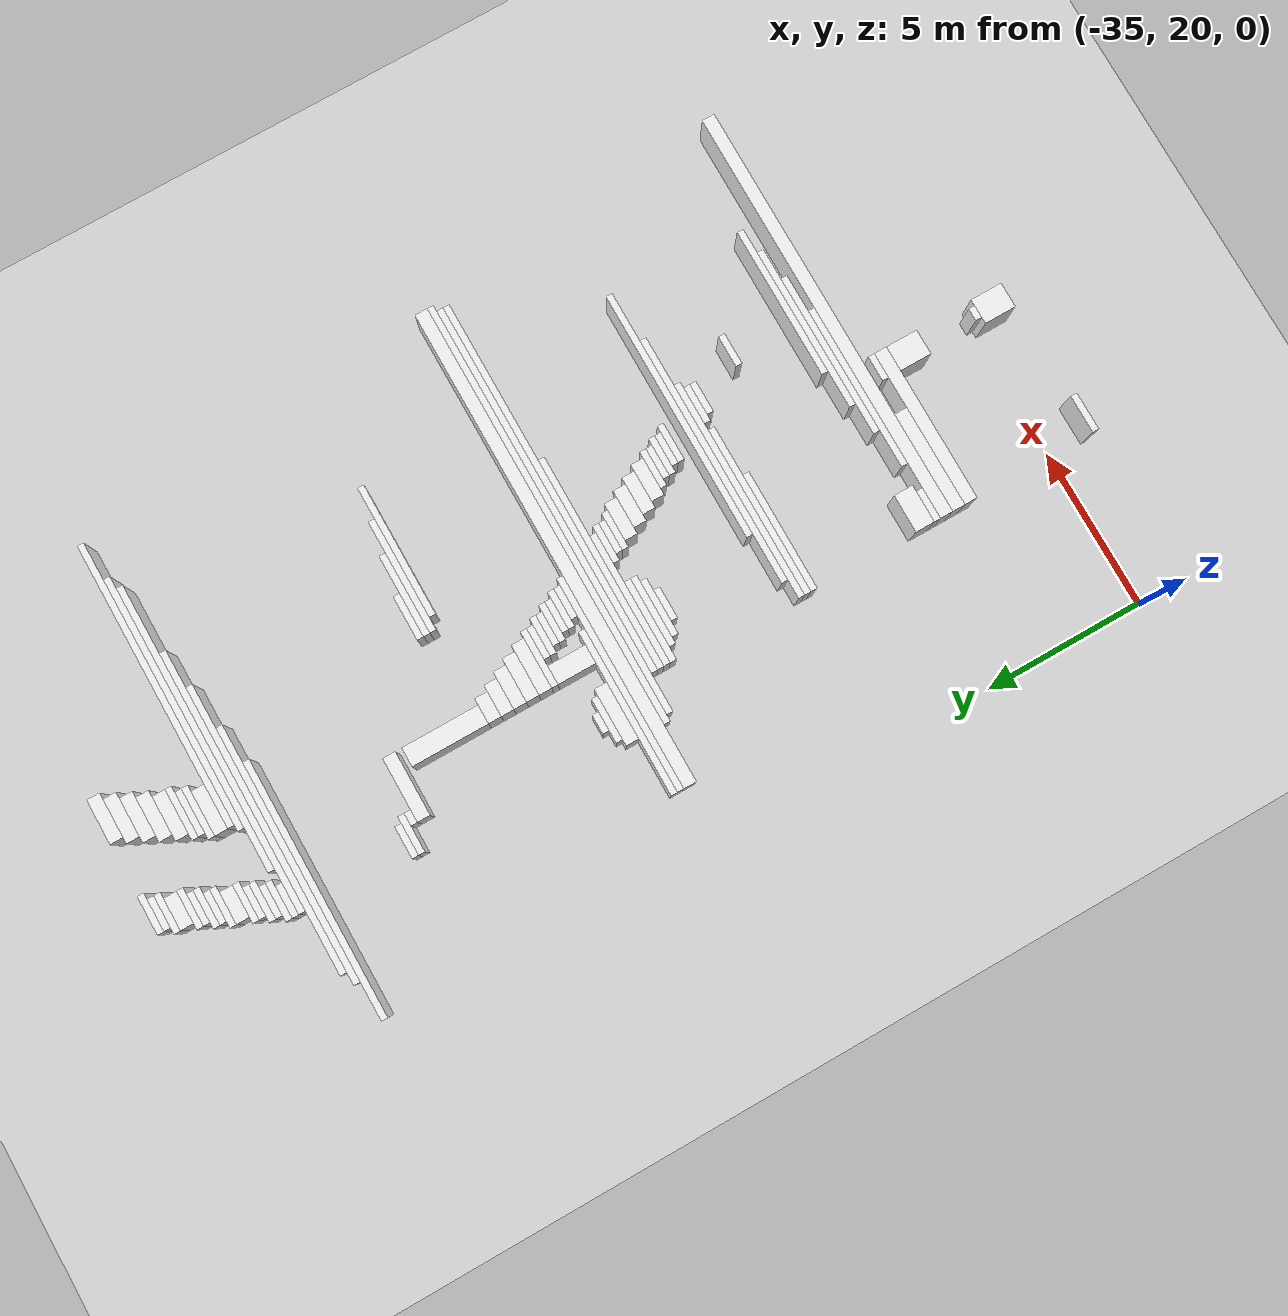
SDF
<sdf version="1.7">
 <world name="default">
  <model name="ground_plane">
   <static>1</static>
   <link name="link">
    <collision name="collision">
     <geometry><plane><normal>0 0 1</normal><size>120 120</size></plane></geometry>
    </collision>
    <visual name="visual">
     <geometry><plane><normal>0 0 1</normal><size>120 120</size></plane></geometry>
     <material>
      <script><uri>file://media/materials/scripts/gazebo.material</uri><name>Gazebo/Grey</name></script>
     </material>
    </visual>
   </link>
  </model>
  <model name="random_complex_01_model">
   <static>1</static>
   <link name="obs_2">
    <pose>-29.0000 48.3000 0.8000 0 0 0</pose>
    <collision name="obs_2_col"><geometry><box><size>1.2000 0.2000 1.6000</size></box></geometry></collision>
    <visual name="obs_2_vis">
     <geometry><box><size>1.2000 0.2000 1.6000</size></box></geometry>
     <material>
      <script><uri>file://media/materials/scripts/gazebo.material</uri><name>Gazebo/White</name></script>
     </material>
    </visual>
   </link>
   <link name="obs_7">
    <pose>-26.1000 48.2000 0.8000 0 0 0</pose>
    <collision name="obs_7_col"><geometry><box><size>1.4000 0.4000 1.6000</size></box></geometry></collision>
    <visual name="obs_7_vis">
     <geometry><box><size>1.4000 0.4000 1.6000</size></box></geometry>
     <material>
      <script><uri>file://media/materials/scripts/gazebo.material</uri><name>Gazebo/White</name></script>
     </material>
    </visual>
   </link>
   <link name="obs_9">
    <pose>-29.1000 48.1000 0.8000 0 0 0</pose>
    <collision name="obs_9_col"><geometry><box><size>1.0000 0.2000 1.6000</size></box></geometry></collision>
    <visual name="obs_9_vis">
     <geometry><box><size>1.0000 0.2000 1.6000</size></box></geometry>
     <material>
      <script><uri>file://media/materials/scripts/gazebo.material</uri><name>Gazebo/White</name></script>
     </material>
    </visual>
   </link>
   <link name="obs_16">
    <pose>-29.2000 47.9000 0.8000 0 0 0</pose>
    <collision name="obs_16_col"><geometry><box><size>1.2000 0.2000 1.6000</size></box></geometry></collision>
    <visual name="obs_16_vis">
     <geometry><box><size>1.2000 0.2000 1.6000</size></box></geometry>
     <material>
      <script><uri>file://media/materials/scripts/gazebo.material</uri><name>Gazebo/White</name></script>
     </material>
    </visual>
   </link>
   <link name="obs_22">
    <pose>-26.3000 47.8000 0.8000 0 0 0</pose>
    <collision name="obs_22_col"><geometry><box><size>1.4000 0.4000 1.6000</size></box></geometry></collision>
    <visual name="obs_22_vis">
     <geometry><box><size>1.4000 0.4000 1.6000</size></box></geometry>
     <material>
      <script><uri>file://media/materials/scripts/gazebo.material</uri><name>Gazebo/White</name></script>
     </material>
    </visual>
   </link>
   <link name="obs_27">
    <pose>-29.3000 47.6000 0.8000 0 0 0</pose>
    <collision name="obs_27_col"><geometry><box><size>1.0000 0.4000 1.6000</size></box></geometry></collision>
    <visual name="obs_27_vis">
     <geometry><box><size>1.0000 0.4000 1.6000</size></box></geometry>
     <material>
      <script><uri>file://media/materials/scripts/gazebo.material</uri><name>Gazebo/White</name></script>
     </material>
    </visual>
   </link>
   <link name="obs_35">
    <pose>-26.5000 47.4000 0.8000 0 0 0</pose>
    <collision name="obs_35_col"><geometry><box><size>1.4000 0.4000 1.6000</size></box></geometry></collision>
    <visual name="obs_35_vis">
     <geometry><box><size>1.4000 0.4000 1.6000</size></box></geometry>
     <material>
      <script><uri>file://media/materials/scripts/gazebo.material</uri><name>Gazebo/White</name></script>
     </material>
    </visual>
   </link>
   <link name="obs_37">
    <pose>-29.4000 47.3000 0.8000 0 0 0</pose>
    <collision name="obs_37_col"><geometry><box><size>1.2000 0.2000 1.6000</size></box></geometry></collision>
    <visual name="obs_37_vis">
     <geometry><box><size>1.2000 0.2000 1.6000</size></box></geometry>
     <material>
      <script><uri>file://media/materials/scripts/gazebo.material</uri><name>Gazebo/White</name></script>
     </material>
    </visual>
   </link>
   <link name="obs_43">
    <pose>-29.5000 47.1000 0.8000 0 0 0</pose>
    <collision name="obs_43_col"><geometry><box><size>1.0000 0.2000 1.6000</size></box></geometry></collision>
    <visual name="obs_43_vis">
     <geometry><box><size>1.0000 0.2000 1.6000</size></box></geometry>
     <material>
      <script><uri>file://media/materials/scripts/gazebo.material</uri><name>Gazebo/White</name></script>
     </material>
    </visual>
   </link>
   <link name="obs_48">
    <pose>-26.7000 47.0000 0.8000 0 0 0</pose>
    <collision name="obs_48_col"><geometry><box><size>1.4000 0.4000 1.6000</size></box></geometry></collision>
    <visual name="obs_48_vis">
     <geometry><box><size>1.4000 0.4000 1.6000</size></box></geometry>
     <material>
      <script><uri>file://media/materials/scripts/gazebo.material</uri><name>Gazebo/White</name></script>
     </material>
    </visual>
   </link>
   <link name="obs_50">
    <pose>-29.6000 46.9000 0.8000 0 0 0</pose>
    <collision name="obs_50_col"><geometry><box><size>1.2000 0.2000 1.6000</size></box></geometry></collision>
    <visual name="obs_50_vis">
     <geometry><box><size>1.2000 0.2000 1.6000</size></box></geometry>
     <material>
      <script><uri>file://media/materials/scripts/gazebo.material</uri><name>Gazebo/White</name></script>
     </material>
    </visual>
   </link>
   <link name="obs_57">
    <pose>-29.7000 46.7000 0.8000 0 0 0</pose>
    <collision name="obs_57_col"><geometry><box><size>1.0000 0.2000 1.6000</size></box></geometry></collision>
    <visual name="obs_57_vis">
     <geometry><box><size>1.0000 0.2000 1.6000</size></box></geometry>
     <material>
      <script><uri>file://media/materials/scripts/gazebo.material</uri><name>Gazebo/White</name></script>
     </material>
    </visual>
   </link>
   <link name="obs_61">
    <pose>-26.9000 46.6000 0.8000 0 0 0</pose>
    <collision name="obs_61_col"><geometry><box><size>1.4000 0.4000 1.6000</size></box></geometry></collision>
    <visual name="obs_61_vis">
     <geometry><box><size>1.4000 0.4000 1.6000</size></box></geometry>
     <material>
      <script><uri>file://media/materials/scripts/gazebo.material</uri><name>Gazebo/White</name></script>
     </material>
    </visual>
   </link>
   <link name="obs_64">
    <pose>-29.8000 46.5000 0.8000 0 0 0</pose>
    <collision name="obs_64_col"><geometry><box><size>1.2000 0.2000 1.6000</size></box></geometry></collision>
    <visual name="obs_64_vis">
     <geometry><box><size>1.2000 0.2000 1.6000</size></box></geometry>
     <material>
      <script><uri>file://media/materials/scripts/gazebo.material</uri><name>Gazebo/White</name></script>
     </material>
    </visual>
   </link>
   <link name="obs_71">
    <pose>-27.0000 46.3000 0.8000 0 0 0</pose>
    <collision name="obs_71_col"><geometry><box><size>1.6000 0.2000 1.6000</size></box></geometry></collision>
    <visual name="obs_71_vis">
     <geometry><box><size>1.6000 0.2000 1.6000</size></box></geometry>
     <material>
      <script><uri>file://media/materials/scripts/gazebo.material</uri><name>Gazebo/White</name></script>
     </material>
    </visual>
   </link>
   <link name="obs_78">
    <pose>-29.9000 46.2000 0.8000 0 0 0</pose>
    <collision name="obs_78_col"><geometry><box><size>1.0000 0.4000 1.6000</size></box></geometry></collision>
    <visual name="obs_78_vis">
     <geometry><box><size>1.0000 0.4000 1.6000</size></box></geometry>
     <material>
      <script><uri>file://media/materials/scripts/gazebo.material</uri><name>Gazebo/White</name></script>
     </material>
    </visual>
   </link>
   <link name="obs_81">
    <pose>-27.1000 46.1000 0.8000 0 0 0</pose>
    <collision name="obs_81_col"><geometry><box><size>1.4000 0.2000 1.6000</size></box></geometry></collision>
    <visual name="obs_81_vis">
     <geometry><box><size>1.4000 0.2000 1.6000</size></box></geometry>
     <material>
      <script><uri>file://media/materials/scripts/gazebo.material</uri><name>Gazebo/White</name></script>
     </material>
    </visual>
   </link>
   <link name="obs_90">
    <pose>-30.0000 45.9000 0.8000 0 0 0</pose>
    <collision name="obs_90_col"><geometry><box><size>1.2000 0.2000 1.6000</size></box></geometry></collision>
    <visual name="obs_90_vis">
     <geometry><box><size>1.2000 0.2000 1.6000</size></box></geometry>
     <material>
      <script><uri>file://media/materials/scripts/gazebo.material</uri><name>Gazebo/White</name></script>
     </material>
    </visual>
   </link>
   <link name="obs_91">
    <pose>-27.2000 45.9000 0.8000 0 0 0</pose>
    <collision name="obs_91_col"><geometry><box><size>1.6000 0.2000 1.6000</size></box></geometry></collision>
    <visual name="obs_91_vis">
     <geometry><box><size>1.6000 0.2000 1.6000</size></box></geometry>
     <material>
      <script><uri>file://media/materials/scripts/gazebo.material</uri><name>Gazebo/White</name></script>
     </material>
    </visual>
   </link>
   <link name="obs_99">
    <pose>-30.1000 45.7000 0.8000 0 0 0</pose>
    <collision name="obs_99_col"><geometry><box><size>1.0000 0.2000 1.6000</size></box></geometry></collision>
    <visual name="obs_99_vis">
     <geometry><box><size>1.0000 0.2000 1.6000</size></box></geometry>
     <material>
      <script><uri>file://media/materials/scripts/gazebo.material</uri><name>Gazebo/White</name></script>
     </material>
    </visual>
   </link>
   <link name="obs_104">
    <pose>-27.3000 45.6000 0.8000 0 0 0</pose>
    <collision name="obs_104_col"><geometry><box><size>1.4000 0.4000 1.6000</size></box></geometry></collision>
    <visual name="obs_104_vis">
     <geometry><box><size>1.4000 0.4000 1.6000</size></box></geometry>
     <material>
      <script><uri>file://media/materials/scripts/gazebo.material</uri><name>Gazebo/White</name></script>
     </material>
    </visual>
   </link>
   <link name="obs_110">
    <pose>-30.2000 45.5000 0.8000 0 0 0</pose>
    <collision name="obs_110_col"><geometry><box><size>1.2000 0.2000 1.6000</size></box></geometry></collision>
    <visual name="obs_110_vis">
     <geometry><box><size>1.2000 0.2000 1.6000</size></box></geometry>
     <material>
      <script><uri>file://media/materials/scripts/gazebo.material</uri><name>Gazebo/White</name></script>
     </material>
    </visual>
   </link>
   <link name="obs_117">
    <pose>-30.3000 45.3000 0.8000 0 0 0</pose>
    <collision name="obs_117_col"><geometry><box><size>1.0000 0.2000 1.6000</size></box></geometry></collision>
    <visual name="obs_117_vis">
     <geometry><box><size>1.0000 0.2000 1.6000</size></box></geometry>
     <material>
      <script><uri>file://media/materials/scripts/gazebo.material</uri><name>Gazebo/White</name></script>
     </material>
    </visual>
   </link>
   <link name="obs_118">
    <pose>-23.5000 45.3000 0.8000 0 0 0</pose>
    <collision name="obs_118_col"><geometry><box><size>9.0000 0.2000 1.6000</size></box></geometry></collision>
    <visual name="obs_118_vis">
     <geometry><box><size>9.0000 0.2000 1.6000</size></box></geometry>
     <material>
      <script><uri>file://media/materials/scripts/gazebo.material</uri><name>Gazebo/White</name></script>
     </material>
    </visual>
   </link>
   <link name="obs_127">
    <pose>-30.4000 45.1000 0.8000 0 0 0</pose>
    <collision name="obs_127_col"><geometry><box><size>1.2000 0.2000 1.6000</size></box></geometry></collision>
    <visual name="obs_127_vis">
     <geometry><box><size>1.2000 0.2000 1.6000</size></box></geometry>
     <material>
      <script><uri>file://media/materials/scripts/gazebo.material</uri><name>Gazebo/White</name></script>
     </material>
    </visual>
   </link>
   <link name="obs_128">
    <pose>-24.2000 45.1000 0.8000 0 0 0</pose>
    <collision name="obs_128_col"><geometry><box><size>8.0000 0.2000 1.6000</size></box></geometry></collision>
    <visual name="obs_128_vis">
     <geometry><box><size>8.0000 0.2000 1.6000</size></box></geometry>
     <material>
      <script><uri>file://media/materials/scripts/gazebo.material</uri><name>Gazebo/White</name></script>
     </material>
    </visual>
   </link>
   <link name="obs_135">
    <pose>-30.5000 44.9000 0.8000 0 0 0</pose>
    <collision name="obs_135_col"><geometry><box><size>1.0000 0.2000 1.6000</size></box></geometry></collision>
    <visual name="obs_135_vis">
     <geometry><box><size>1.0000 0.2000 1.6000</size></box></geometry>
     <material>
      <script><uri>file://media/materials/scripts/gazebo.material</uri><name>Gazebo/White</name></script>
     </material>
    </visual>
   </link>
   <link name="obs_136">
    <pose>-25.1000 44.9000 0.8000 0 0 0</pose>
    <collision name="obs_136_col"><geometry><box><size>9.0000 0.2000 1.6000</size></box></geometry></collision>
    <visual name="obs_136_vis">
     <geometry><box><size>9.0000 0.2000 1.6000</size></box></geometry>
     <material>
      <script><uri>file://media/materials/scripts/gazebo.material</uri><name>Gazebo/White</name></script>
     </material>
    </visual>
   </link>
   <link name="obs_144">
    <pose>-26.9000 44.7000 0.8000 0 0 0</pose>
    <collision name="obs_144_col"><geometry><box><size>8.2000 0.2000 1.6000</size></box></geometry></collision>
    <visual name="obs_144_vis">
     <geometry><box><size>8.2000 0.2000 1.6000</size></box></geometry>
     <material>
      <script><uri>file://media/materials/scripts/gazebo.material</uri><name>Gazebo/White</name></script>
     </material>
    </visual>
   </link>
   <link name="obs_151">
    <pose>-28.5000 44.5000 0.8000 0 0 0</pose>
    <collision name="obs_151_col"><geometry><box><size>9.0000 0.2000 1.6000</size></box></geometry></collision>
    <visual name="obs_151_vis">
     <geometry><box><size>9.0000 0.2000 1.6000</size></box></geometry>
     <material>
      <script><uri>file://media/materials/scripts/gazebo.material</uri><name>Gazebo/White</name></script>
     </material>
    </visual>
   </link>
   <link name="obs_158">
    <pose>-29.4000 44.3000 0.8000 0 0 0</pose>
    <collision name="obs_158_col"><geometry><box><size>8.0000 0.2000 1.6000</size></box></geometry></collision>
    <visual name="obs_158_vis">
     <geometry><box><size>8.0000 0.2000 1.6000</size></box></geometry>
     <material>
      <script><uri>file://media/materials/scripts/gazebo.material</uri><name>Gazebo/White</name></script>
     </material>
    </visual>
   </link>
   <link name="obs_164">
    <pose>-30.6000 44.1000 0.8000 0 0 0</pose>
    <collision name="obs_164_col"><geometry><box><size>8.0000 0.2000 1.6000</size></box></geometry></collision>
    <visual name="obs_164_vis">
     <geometry><box><size>8.0000 0.2000 1.6000</size></box></geometry>
     <material>
      <script><uri>file://media/materials/scripts/gazebo.material</uri><name>Gazebo/White</name></script>
     </material>
    </visual>
   </link>
   <link name="obs_256">
    <pose>-30.7000 41.3000 0.8000 0 0 0</pose>
    <collision name="obs_256_col"><geometry><box><size>1.0000 0.2000 1.6000</size></box></geometry></collision>
    <visual name="obs_256_vis">
     <geometry><box><size>1.0000 0.2000 1.6000</size></box></geometry>
     <material>
      <script><uri>file://media/materials/scripts/gazebo.material</uri><name>Gazebo/White</name></script>
     </material>
    </visual>
   </link>
   <link name="obs_265">
    <pose>-30.6000 41.1000 0.8000 0 0 0</pose>
    <collision name="obs_265_col"><geometry><box><size>1.2000 0.2000 1.6000</size></box></geometry></collision>
    <visual name="obs_265_vis">
     <geometry><box><size>1.2000 0.2000 1.6000</size></box></geometry>
     <material>
      <script><uri>file://media/materials/scripts/gazebo.material</uri><name>Gazebo/White</name></script>
     </material>
    </visual>
   </link>
   <link name="obs_272">
    <pose>-30.2000 40.9000 0.8000 0 0 0</pose>
    <collision name="obs_272_col"><geometry><box><size>0.4000 0.2000 1.6000</size></box></geometry></collision>
    <visual name="obs_272_vis">
     <geometry><box><size>0.4000 0.2000 1.6000</size></box></geometry>
     <material>
      <script><uri>file://media/materials/scripts/gazebo.material</uri><name>Gazebo/White</name></script>
     </material>
    </visual>
   </link>
   <link name="obs_283">
    <pose>-29.4000 40.6000 0.8000 0 0 0</pose>
    <collision name="obs_283_col"><geometry><box><size>2.0000 0.4000 1.6000</size></box></geometry></collision>
    <visual name="obs_283_vis">
     <geometry><box><size>2.0000 0.4000 1.6000</size></box></geometry>
     <material>
      <script><uri>file://media/materials/scripts/gazebo.material</uri><name>Gazebo/White</name></script>
     </material>
    </visual>
   </link>
   <link name="obs_326">
    <pose>-25.3000 38.3000 0.8000 0 0 0</pose>
    <collision name="obs_326_col"><geometry><box><size>1.4000 0.2000 1.6000</size></box></geometry></collision>
    <visual name="obs_326_vis">
     <geometry><box><size>1.4000 0.2000 1.6000</size></box></geometry>
     <material>
      <script><uri>file://media/materials/scripts/gazebo.material</uri><name>Gazebo/White</name></script>
     </material>
    </visual>
   </link>
   <link name="obs_332">
    <pose>-24.7000 38.1000 0.8000 0 0 0</pose>
    <collision name="obs_332_col"><geometry><box><size>2.6000 0.2000 1.6000</size></box></geometry></collision>
    <visual name="obs_332_vis">
     <geometry><box><size>2.6000 0.2000 1.6000</size></box></geometry>
     <material>
      <script><uri>file://media/materials/scripts/gazebo.material</uri><name>Gazebo/White</name></script>
     </material>
    </visual>
   </link>
   <link name="obs_337">
    <pose>-28.7000 39.0000 0.8000 0 0 0</pose>
    <collision name="obs_337_col"><geometry><box><size>0.6000 2.4000 1.6000</size></box></geometry></collision>
    <visual name="obs_337_vis">
     <geometry><box><size>0.6000 2.4000 1.6000</size></box></geometry>
     <material>
      <script><uri>file://media/materials/scripts/gazebo.material</uri><name>Gazebo/White</name></script>
     </material>
    </visual>
   </link>
   <link name="obs_340">
    <pose>-24.2000 37.9000 0.8000 0 0 0</pose>
    <collision name="obs_340_col"><geometry><box><size>3.6000 0.2000 1.6000</size></box></geometry></collision>
    <visual name="obs_340_vis">
     <geometry><box><size>3.6000 0.2000 1.6000</size></box></geometry>
     <material>
      <script><uri>file://media/materials/scripts/gazebo.material</uri><name>Gazebo/White</name></script>
     </material>
    </visual>
   </link>
   <link name="obs_345">
    <pose>-23.5000 37.7000 0.8000 0 0 0</pose>
    <collision name="obs_345_col"><geometry><box><size>4.2000 0.2000 1.6000</size></box></geometry></collision>
    <visual name="obs_345_vis">
     <geometry><box><size>4.2000 0.2000 1.6000</size></box></geometry>
     <material>
      <script><uri>file://media/materials/scripts/gazebo.material</uri><name>Gazebo/White</name></script>
     </material>
    </visual>
   </link>
   <link name="obs_351">
    <pose>-28.6000 37.6000 0.8000 0 0 0</pose>
    <collision name="obs_351_col"><geometry><box><size>0.8000 0.4000 1.6000</size></box></geometry></collision>
    <visual name="obs_351_vis">
     <geometry><box><size>0.8000 0.4000 1.6000</size></box></geometry>
     <material>
      <script><uri>file://media/materials/scripts/gazebo.material</uri><name>Gazebo/White</name></script>
     </material>
    </visual>
   </link>
   <link name="obs_366">
    <pose>-28.5000 37.2000 0.8000 0 0 0</pose>
    <collision name="obs_366_col"><geometry><box><size>1.0000 0.4000 1.6000</size></box></geometry></collision>
    <visual name="obs_366_vis">
     <geometry><box><size>1.0000 0.4000 1.6000</size></box></geometry>
     <material>
      <script><uri>file://media/materials/scripts/gazebo.material</uri><name>Gazebo/White</name></script>
     </material>
    </visual>
   </link>
   <link name="obs_378">
    <pose>-28.4000 36.8000 0.8000 0 0 0</pose>
    <collision name="obs_378_col"><geometry><box><size>1.2000 0.4000 1.6000</size></box></geometry></collision>
    <visual name="obs_378_vis">
     <geometry><box><size>1.2000 0.4000 1.6000</size></box></geometry>
     <material>
      <script><uri>file://media/materials/scripts/gazebo.material</uri><name>Gazebo/White</name></script>
     </material>
    </visual>
   </link>
   <link name="obs_394">
    <pose>-28.3000 36.4000 0.8000 0 0 0</pose>
    <collision name="obs_394_col"><geometry><box><size>1.4000 0.4000 1.6000</size></box></geometry></collision>
    <visual name="obs_394_vis">
     <geometry><box><size>1.4000 0.4000 1.6000</size></box></geometry>
     <material>
      <script><uri>file://media/materials/scripts/gazebo.material</uri><name>Gazebo/White</name></script>
     </material>
    </visual>
   </link>
   <link name="obs_415">
    <pose>-28.2000 36.0000 0.8000 0 0 0</pose>
    <collision name="obs_415_col"><geometry><box><size>1.6000 0.4000 1.6000</size></box></geometry></collision>
    <visual name="obs_415_vis">
     <geometry><box><size>1.6000 0.4000 1.6000</size></box></geometry>
     <material>
      <script><uri>file://media/materials/scripts/gazebo.material</uri><name>Gazebo/White</name></script>
     </material>
    </visual>
   </link>
   <link name="obs_426">
    <pose>-28.1000 35.7000 0.8000 0 0 0</pose>
    <collision name="obs_426_col"><geometry><box><size>1.8000 0.2000 1.6000</size></box></geometry></collision>
    <visual name="obs_426_vis">
     <geometry><box><size>1.8000 0.2000 1.6000</size></box></geometry>
     <material>
      <script><uri>file://media/materials/scripts/gazebo.material</uri><name>Gazebo/White</name></script>
     </material>
    </visual>
   </link>
   <link name="obs_432">
    <pose>-27.7000 35.5000 0.8000 0 0 0</pose>
    <collision name="obs_432_col"><geometry><box><size>1.0000 0.2000 1.6000</size></box></geometry></collision>
    <visual name="obs_432_vis">
     <geometry><box><size>1.0000 0.2000 1.6000</size></box></geometry>
     <material>
      <script><uri>file://media/materials/scripts/gazebo.material</uri><name>Gazebo/White</name></script>
     </material>
    </visual>
   </link>
   <link name="obs_436">
    <pose>-27.6000 35.3000 0.8000 0 0 0</pose>
    <collision name="obs_436_col"><geometry><box><size>1.2000 0.2000 1.6000</size></box></geometry></collision>
    <visual name="obs_436_vis">
     <geometry><box><size>1.2000 0.2000 1.6000</size></box></geometry>
     <material>
      <script><uri>file://media/materials/scripts/gazebo.material</uri><name>Gazebo/White</name></script>
     </material>
    </visual>
   </link>
   <link name="obs_442">
    <pose>-30.5000 35.1000 0.8000 0 0 0</pose>
    <collision name="obs_442_col"><geometry><box><size>0.6000 0.2000 1.6000</size></box></geometry></collision>
    <visual name="obs_442_vis">
     <geometry><box><size>0.6000 0.2000 1.6000</size></box></geometry>
     <material>
      <script><uri>file://media/materials/scripts/gazebo.material</uri><name>Gazebo/White</name></script>
     </material>
    </visual>
   </link>
   <link name="obs_443">
    <pose>-27.5000 35.1000 0.8000 0 0 0</pose>
    <collision name="obs_443_col"><geometry><box><size>1.0000 0.2000 1.6000</size></box></geometry></collision>
    <visual name="obs_443_vis">
     <geometry><box><size>1.0000 0.2000 1.6000</size></box></geometry>
     <material>
      <script><uri>file://media/materials/scripts/gazebo.material</uri><name>Gazebo/White</name></script>
     </material>
    </visual>
   </link>
   <link name="obs_450">
    <pose>-30.5000 34.9000 0.8000 0 0 0</pose>
    <collision name="obs_450_col"><geometry><box><size>1.4000 0.2000 1.6000</size></box></geometry></collision>
    <visual name="obs_450_vis">
     <geometry><box><size>1.4000 0.2000 1.6000</size></box></geometry>
     <material>
      <script><uri>file://media/materials/scripts/gazebo.material</uri><name>Gazebo/White</name></script>
     </material>
    </visual>
   </link>
   <link name="obs_451">
    <pose>-27.4000 34.9000 0.8000 0 0 0</pose>
    <collision name="obs_451_col"><geometry><box><size>1.2000 0.2000 1.6000</size></box></geometry></collision>
    <visual name="obs_451_vis">
     <geometry><box><size>1.2000 0.2000 1.6000</size></box></geometry>
     <material>
      <script><uri>file://media/materials/scripts/gazebo.material</uri><name>Gazebo/White</name></script>
     </material>
    </visual>
   </link>
   <link name="obs_457">
    <pose>-27.3000 34.7000 0.8000 0 0 0</pose>
    <collision name="obs_457_col"><geometry><box><size>1.0000 0.2000 1.6000</size></box></geometry></collision>
    <visual name="obs_457_vis">
     <geometry><box><size>1.0000 0.2000 1.6000</size></box></geometry>
     <material>
      <script><uri>file://media/materials/scripts/gazebo.material</uri><name>Gazebo/White</name></script>
     </material>
    </visual>
   </link>
   <link name="obs_463">
    <pose>-28.7000 35.0000 0.8000 0 0 0</pose>
    <collision name="obs_463_col"><geometry><box><size>0.6000 1.2000 1.6000</size></box></geometry></collision>
    <visual name="obs_463_vis">
     <geometry><box><size>0.6000 1.2000 1.6000</size></box></geometry>
     <material>
      <script><uri>file://media/materials/scripts/gazebo.material</uri><name>Gazebo/White</name></script>
     </material>
    </visual>
   </link>
   <link name="obs_464">
    <pose>-30.5000 34.6000 0.8000 0 0 0</pose>
    <collision name="obs_464_col"><geometry><box><size>1.8000 0.4000 1.6000</size></box></geometry></collision>
    <visual name="obs_464_vis">
     <geometry><box><size>1.8000 0.4000 1.6000</size></box></geometry>
     <material>
      <script><uri>file://media/materials/scripts/gazebo.material</uri><name>Gazebo/White</name></script>
     </material>
    </visual>
   </link>
   <link name="obs_466">
    <pose>-27.2000 34.5000 0.8000 0 0 0</pose>
    <collision name="obs_466_col"><geometry><box><size>1.2000 0.2000 1.6000</size></box></geometry></collision>
    <visual name="obs_466_vis">
     <geometry><box><size>1.2000 0.2000 1.6000</size></box></geometry>
     <material>
      <script><uri>file://media/materials/scripts/gazebo.material</uri><name>Gazebo/White</name></script>
     </material>
    </visual>
   </link>
   <link name="obs_476">
    <pose>-30.6000 34.3000 0.8000 0 0 0</pose>
    <collision name="obs_476_col"><geometry><box><size>5.2000 0.2000 1.6000</size></box></geometry></collision>
    <visual name="obs_476_vis">
     <geometry><box><size>5.2000 0.2000 1.6000</size></box></geometry>
     <material>
      <script><uri>file://media/materials/scripts/gazebo.material</uri><name>Gazebo/White</name></script>
     </material>
    </visual>
   </link>
   <link name="obs_477">
    <pose>-27.1000 34.3000 0.8000 0 0 0</pose>
    <collision name="obs_477_col"><geometry><box><size>1.0000 0.2000 1.6000</size></box></geometry></collision>
    <visual name="obs_477_vis">
     <geometry><box><size>1.0000 0.2000 1.6000</size></box></geometry>
     <material>
      <script><uri>file://media/materials/scripts/gazebo.material</uri><name>Gazebo/White</name></script>
     </material>
    </visual>
   </link>
   <link name="obs_487">
    <pose>-29.8000 34.1000 0.8000 0 0 0</pose>
    <collision name="obs_487_col"><geometry><box><size>6.8000 0.2000 1.6000</size></box></geometry></collision>
    <visual name="obs_487_vis">
     <geometry><box><size>6.8000 0.2000 1.6000</size></box></geometry>
     <material>
      <script><uri>file://media/materials/scripts/gazebo.material</uri><name>Gazebo/White</name></script>
     </material>
    </visual>
   </link>
   <link name="obs_503">
    <pose>-25.5000 33.8000 0.8000 0 0 0</pose>
    <collision name="obs_503_col"><geometry><box><size>15.4000 0.4000 1.6000</size></box></geometry></collision>
    <visual name="obs_503_vis">
     <geometry><box><size>15.4000 0.4000 1.6000</size></box></geometry>
     <material>
      <script><uri>file://media/materials/scripts/gazebo.material</uri><name>Gazebo/White</name></script>
     </material>
    </visual>
   </link>
   <link name="obs_513">
    <pose>-24.6000 33.5000 0.8000 0 0 0</pose>
    <collision name="obs_513_col"><geometry><box><size>13.6000 0.2000 1.6000</size></box></geometry></collision>
    <visual name="obs_513_vis">
     <geometry><box><size>13.6000 0.2000 1.6000</size></box></geometry>
     <material>
      <script><uri>file://media/materials/scripts/gazebo.material</uri><name>Gazebo/White</name></script>
     </material>
    </visual>
   </link>
   <link name="obs_525">
    <pose>-24.6000 33.3000 0.8000 0 0 0</pose>
    <collision name="obs_525_col"><geometry><box><size>13.2000 0.2000 1.6000</size></box></geometry></collision>
    <visual name="obs_525_vis">
     <geometry><box><size>13.2000 0.2000 1.6000</size></box></geometry>
     <material>
      <script><uri>file://media/materials/scripts/gazebo.material</uri><name>Gazebo/White</name></script>
     </material>
    </visual>
   </link>
   <link name="obs_531">
    <pose>-24.0000 33.1000 0.8000 0 0 0</pose>
    <collision name="obs_531_col"><geometry><box><size>12.0000 0.2000 1.6000</size></box></geometry></collision>
    <visual name="obs_531_vis">
     <geometry><box><size>12.0000 0.2000 1.6000</size></box></geometry>
     <material>
      <script><uri>file://media/materials/scripts/gazebo.material</uri><name>Gazebo/White</name></script>
     </material>
    </visual>
   </link>
   <link name="obs_536">
    <pose>-26.6000 32.9000 0.8000 0 0 0</pose>
    <collision name="obs_536_col"><geometry><box><size>6.8000 0.2000 1.6000</size></box></geometry></collision>
    <visual name="obs_536_vis">
     <geometry><box><size>6.8000 0.2000 1.6000</size></box></geometry>
     <material>
      <script><uri>file://media/materials/scripts/gazebo.material</uri><name>Gazebo/White</name></script>
     </material>
    </visual>
   </link>
   <link name="obs_545">
    <pose>-27.9000 32.7000 0.8000 0 0 0</pose>
    <collision name="obs_545_col"><geometry><box><size>4.2000 0.2000 1.6000</size></box></geometry></collision>
    <visual name="obs_545_vis">
     <geometry><box><size>4.2000 0.2000 1.6000</size></box></geometry>
     <material>
      <script><uri>file://media/materials/scripts/gazebo.material</uri><name>Gazebo/White</name></script>
     </material>
    </visual>
   </link>
   <link name="obs_554">
    <pose>-28.7000 32.5000 0.8000 0 0 0</pose>
    <collision name="obs_554_col"><geometry><box><size>2.6000 0.2000 1.6000</size></box></geometry></collision>
    <visual name="obs_554_vis">
     <geometry><box><size>2.6000 0.2000 1.6000</size></box></geometry>
     <material>
      <script><uri>file://media/materials/scripts/gazebo.material</uri><name>Gazebo/White</name></script>
     </material>
    </visual>
   </link>
   <link name="obs_555">
    <pose>-26.2000 32.5000 0.8000 0 0 0</pose>
    <collision name="obs_555_col"><geometry><box><size>1.2000 0.2000 1.6000</size></box></geometry></collision>
    <visual name="obs_555_vis">
     <geometry><box><size>1.2000 0.2000 1.6000</size></box></geometry>
     <material>
      <script><uri>file://media/materials/scripts/gazebo.material</uri><name>Gazebo/White</name></script>
     </material>
    </visual>
   </link>
   <link name="obs_563">
    <pose>-28.5000 32.3000 0.8000 0 0 0</pose>
    <collision name="obs_563_col"><geometry><box><size>2.2000 0.2000 1.6000</size></box></geometry></collision>
    <visual name="obs_563_vis">
     <geometry><box><size>2.2000 0.2000 1.6000</size></box></geometry>
     <material>
      <script><uri>file://media/materials/scripts/gazebo.material</uri><name>Gazebo/White</name></script>
     </material>
    </visual>
   </link>
   <link name="obs_564">
    <pose>-26.1000 32.3000 0.8000 0 0 0</pose>
    <collision name="obs_564_col"><geometry><box><size>1.0000 0.2000 1.6000</size></box></geometry></collision>
    <visual name="obs_564_vis">
     <geometry><box><size>1.0000 0.2000 1.6000</size></box></geometry>
     <material>
      <script><uri>file://media/materials/scripts/gazebo.material</uri><name>Gazebo/White</name></script>
     </material>
    </visual>
   </link>
   <link name="obs_573">
    <pose>-28.5000 32.1000 0.8000 0 0 0</pose>
    <collision name="obs_573_col"><geometry><box><size>1.8000 0.2000 1.6000</size></box></geometry></collision>
    <visual name="obs_573_vis">
     <geometry><box><size>1.8000 0.2000 1.6000</size></box></geometry>
     <material>
      <script><uri>file://media/materials/scripts/gazebo.material</uri><name>Gazebo/White</name></script>
     </material>
    </visual>
   </link>
   <link name="obs_574">
    <pose>-26.0000 32.1000 0.8000 0 0 0</pose>
    <collision name="obs_574_col"><geometry><box><size>1.2000 0.2000 1.6000</size></box></geometry></collision>
    <visual name="obs_574_vis">
     <geometry><box><size>1.2000 0.2000 1.6000</size></box></geometry>
     <material>
      <script><uri>file://media/materials/scripts/gazebo.material</uri><name>Gazebo/White</name></script>
     </material>
    </visual>
   </link>
   <link name="obs_582">
    <pose>-28.5000 31.9000 0.8000 0 0 0</pose>
    <collision name="obs_582_col"><geometry><box><size>1.0000 0.2000 1.6000</size></box></geometry></collision>
    <visual name="obs_582_vis">
     <geometry><box><size>1.0000 0.2000 1.6000</size></box></geometry>
     <material>
      <script><uri>file://media/materials/scripts/gazebo.material</uri><name>Gazebo/White</name></script>
     </material>
    </visual>
   </link>
   <link name="obs_589">
    <pose>-25.8000 31.8000 0.8000 0 0 0</pose>
    <collision name="obs_589_col"><geometry><box><size>1.2000 0.4000 1.6000</size></box></geometry></collision>
    <visual name="obs_589_vis">
     <geometry><box><size>1.2000 0.4000 1.6000</size></box></geometry>
     <material>
      <script><uri>file://media/materials/scripts/gazebo.material</uri><name>Gazebo/White</name></script>
     </material>
    </visual>
   </link>
   <link name="obs_605">
    <pose>-25.6000 31.4000 0.8000 0 0 0</pose>
    <collision name="obs_605_col"><geometry><box><size>1.2000 0.4000 1.6000</size></box></geometry></collision>
    <visual name="obs_605_vis">
     <geometry><box><size>1.2000 0.4000 1.6000</size></box></geometry>
     <material>
      <script><uri>file://media/materials/scripts/gazebo.material</uri><name>Gazebo/White</name></script>
     </material>
    </visual>
   </link>
   <link name="obs_618">
    <pose>-25.4000 31.0000 0.8000 0 0 0</pose>
    <collision name="obs_618_col"><geometry><box><size>1.2000 0.4000 1.6000</size></box></geometry></collision>
    <visual name="obs_618_vis">
     <geometry><box><size>1.2000 0.4000 1.6000</size></box></geometry>
     <material>
      <script><uri>file://media/materials/scripts/gazebo.material</uri><name>Gazebo/White</name></script>
     </material>
    </visual>
   </link>
   <link name="obs_627">
    <pose>-25.2000 30.6000 0.8000 0 0 0</pose>
    <collision name="obs_627_col"><geometry><box><size>1.2000 0.4000 1.6000</size></box></geometry></collision>
    <visual name="obs_627_vis">
     <geometry><box><size>1.2000 0.4000 1.6000</size></box></geometry>
     <material>
      <script><uri>file://media/materials/scripts/gazebo.material</uri><name>Gazebo/White</name></script>
     </material>
    </visual>
   </link>
   <link name="obs_634">
    <pose>-25.0000 30.3000 0.8000 0 0 0</pose>
    <collision name="obs_634_col"><geometry><box><size>1.2000 0.2000 1.6000</size></box></geometry></collision>
    <visual name="obs_634_vis">
     <geometry><box><size>1.2000 0.2000 1.6000</size></box></geometry>
     <material>
      <script><uri>file://media/materials/scripts/gazebo.material</uri><name>Gazebo/White</name></script>
     </material>
    </visual>
   </link>
   <link name="obs_639">
    <pose>-24.9000 30.1000 0.8000 0 0 0</pose>
    <collision name="obs_639_col"><geometry><box><size>1.0000 0.2000 1.6000</size></box></geometry></collision>
    <visual name="obs_639_vis">
     <geometry><box><size>1.0000 0.2000 1.6000</size></box></geometry>
     <material>
      <script><uri>file://media/materials/scripts/gazebo.material</uri><name>Gazebo/White</name></script>
     </material>
    </visual>
   </link>
   <link name="obs_644">
    <pose>-24.8000 29.9000 0.8000 0 0 0</pose>
    <collision name="obs_644_col"><geometry><box><size>1.2000 0.2000 1.6000</size></box></geometry></collision>
    <visual name="obs_644_vis">
     <geometry><box><size>1.2000 0.2000 1.6000</size></box></geometry>
     <material>
      <script><uri>file://media/materials/scripts/gazebo.material</uri><name>Gazebo/White</name></script>
     </material>
    </visual>
   </link>
   <link name="obs_652">
    <pose>-24.7000 29.7000 0.8000 0 0 0</pose>
    <collision name="obs_652_col"><geometry><box><size>1.0000 0.2000 1.6000</size></box></geometry></collision>
    <visual name="obs_652_vis">
     <geometry><box><size>1.0000 0.2000 1.6000</size></box></geometry>
     <material>
      <script><uri>file://media/materials/scripts/gazebo.material</uri><name>Gazebo/White</name></script>
     </material>
    </visual>
   </link>
   <link name="obs_660">
    <pose>-24.6000 29.5000 0.8000 0 0 0</pose>
    <collision name="obs_660_col"><geometry><box><size>1.2000 0.2000 1.6000</size></box></geometry></collision>
    <visual name="obs_660_vis">
     <geometry><box><size>1.2000 0.2000 1.6000</size></box></geometry>
     <material>
      <script><uri>file://media/materials/scripts/gazebo.material</uri><name>Gazebo/White</name></script>
     </material>
    </visual>
   </link>
   <link name="obs_683">
    <pose>-24.0000 28.9000 0.8000 0 0 0</pose>
    <collision name="obs_683_col"><geometry><box><size>8.0000 0.2000 1.6000</size></box></geometry></collision>
    <visual name="obs_683_vis">
     <geometry><box><size>8.0000 0.2000 1.6000</size></box></geometry>
     <material>
      <script><uri>file://media/materials/scripts/gazebo.material</uri><name>Gazebo/White</name></script>
     </material>
    </visual>
   </link>
   <link name="obs_690">
    <pose>-25.6000 28.7000 0.8000 0 0 0</pose>
    <collision name="obs_690_col"><geometry><box><size>8.0000 0.2000 1.6000</size></box></geometry></collision>
    <visual name="obs_690_vis">
     <geometry><box><size>8.0000 0.2000 1.6000</size></box></geometry>
     <material>
      <script><uri>file://media/materials/scripts/gazebo.material</uri><name>Gazebo/White</name></script>
     </material>
    </visual>
   </link>
   <link name="obs_699">
    <pose>-26.7000 28.5000 0.8000 0 0 0</pose>
    <collision name="obs_699_col"><geometry><box><size>7.0000 0.2000 1.6000</size></box></geometry></collision>
    <visual name="obs_699_vis">
     <geometry><box><size>7.0000 0.2000 1.6000</size></box></geometry>
     <material>
      <script><uri>file://media/materials/scripts/gazebo.material</uri><name>Gazebo/White</name></script>
     </material>
    </visual>
   </link>
   <link name="obs_709">
    <pose>-27.5000 28.3000 0.8000 0 0 0</pose>
    <collision name="obs_709_col"><geometry><box><size>5.4000 0.2000 1.6000</size></box></geometry></collision>
    <visual name="obs_709_vis">
     <geometry><box><size>5.4000 0.2000 1.6000</size></box></geometry>
     <material>
      <script><uri>file://media/materials/scripts/gazebo.material</uri><name>Gazebo/White</name></script>
     </material>
    </visual>
   </link>
   <link name="obs_710">
    <pose>-24.0000 28.3000 0.8000 0 0 0</pose>
    <collision name="obs_710_col"><geometry><box><size>1.2000 0.2000 1.6000</size></box></geometry></collision>
    <visual name="obs_710_vis">
     <geometry><box><size>1.2000 0.2000 1.6000</size></box></geometry>
     <material>
      <script><uri>file://media/materials/scripts/gazebo.material</uri><name>Gazebo/White</name></script>
     </material>
    </visual>
   </link>
   <link name="obs_724">
    <pose>-28.3000 28.1000 0.8000 0 0 0</pose>
    <collision name="obs_724_col"><geometry><box><size>3.8000 0.2000 1.6000</size></box></geometry></collision>
    <visual name="obs_724_vis">
     <geometry><box><size>3.8000 0.2000 1.6000</size></box></geometry>
     <material>
      <script><uri>file://media/materials/scripts/gazebo.material</uri><name>Gazebo/White</name></script>
     </material>
    </visual>
   </link>
   <link name="obs_725">
    <pose>-23.9000 28.1000 0.8000 0 0 0</pose>
    <collision name="obs_725_col"><geometry><box><size>1.0000 0.2000 1.6000</size></box></geometry></collision>
    <visual name="obs_725_vis">
     <geometry><box><size>1.0000 0.2000 1.6000</size></box></geometry>
     <material>
      <script><uri>file://media/materials/scripts/gazebo.material</uri><name>Gazebo/White</name></script>
     </material>
    </visual>
   </link>
   <link name="obs_766">
    <pose>-23.1000 26.7000 0.8000 0 0 0</pose>
    <collision name="obs_766_col"><geometry><box><size>1.0000 0.2000 1.6000</size></box></geometry></collision>
    <visual name="obs_766_vis">
     <geometry><box><size>1.0000 0.2000 1.6000</size></box></geometry>
     <material>
      <script><uri>file://media/materials/scripts/gazebo.material</uri><name>Gazebo/White</name></script>
     </material>
    </visual>
   </link>
   <link name="obs_831">
    <pose>-22.6000 24.7000 0.8000 0 0 0</pose>
    <collision name="obs_831_col"><geometry><box><size>4.8000 0.2000 1.6000</size></box></geometry></collision>
    <visual name="obs_831_vis">
     <geometry><box><size>4.8000 0.2000 1.6000</size></box></geometry>
     <material>
      <script><uri>file://media/materials/scripts/gazebo.material</uri><name>Gazebo/White</name></script>
     </material>
    </visual>
   </link>
   <link name="obs_838">
    <pose>-23.6000 24.5000 0.8000 0 0 0</pose>
    <collision name="obs_838_col"><geometry><box><size>5.2000 0.2000 1.6000</size></box></geometry></collision>
    <visual name="obs_838_vis">
     <geometry><box><size>5.2000 0.2000 1.6000</size></box></geometry>
     <material>
      <script><uri>file://media/materials/scripts/gazebo.material</uri><name>Gazebo/White</name></script>
     </material>
    </visual>
   </link>
   <link name="obs_842">
    <pose>-29.6000 24.5000 0.8000 0 0 0</pose>
    <collision name="obs_842_col"><geometry><box><size>1.2000 0.6000 1.6000</size></box></geometry></collision>
    <visual name="obs_842_vis">
     <geometry><box><size>1.2000 0.6000 1.6000</size></box></geometry>
     <material>
      <script><uri>file://media/materials/scripts/gazebo.material</uri><name>Gazebo/White</name></script>
     </material>
    </visual>
   </link>
   <link name="obs_847">
    <pose>-24.6000 24.3000 0.8000 0 0 0</pose>
    <collision name="obs_847_col"><geometry><box><size>5.2000 0.2000 1.6000</size></box></geometry></collision>
    <visual name="obs_847_vis">
     <geometry><box><size>5.2000 0.2000 1.6000</size></box></geometry>
     <material>
      <script><uri>file://media/materials/scripts/gazebo.material</uri><name>Gazebo/White</name></script>
     </material>
    </visual>
   </link>
   <link name="obs_854">
    <pose>-29.7000 24.1000 0.8000 0 0 0</pose>
    <collision name="obs_854_col"><geometry><box><size>1.0000 0.2000 1.6000</size></box></geometry></collision>
    <visual name="obs_854_vis">
     <geometry><box><size>1.0000 0.2000 1.6000</size></box></geometry>
     <material>
      <script><uri>file://media/materials/scripts/gazebo.material</uri><name>Gazebo/White</name></script>
     </material>
    </visual>
   </link>
   <link name="obs_855">
    <pose>-25.8000 24.1000 0.8000 0 0 0</pose>
    <collision name="obs_855_col"><geometry><box><size>5.2000 0.2000 1.6000</size></box></geometry></collision>
    <visual name="obs_855_vis">
     <geometry><box><size>5.2000 0.2000 1.6000</size></box></geometry>
     <material>
      <script><uri>file://media/materials/scripts/gazebo.material</uri><name>Gazebo/White</name></script>
     </material>
    </visual>
   </link>
   <link name="obs_863">
    <pose>-23.5000 23.8000 0.8000 0 0 0</pose>
    <collision name="obs_863_col"><geometry><box><size>13.4000 0.4000 1.6000</size></box></geometry></collision>
    <visual name="obs_863_vis">
     <geometry><box><size>13.4000 0.4000 1.6000</size></box></geometry>
     <material>
      <script><uri>file://media/materials/scripts/gazebo.material</uri><name>Gazebo/White</name></script>
     </material>
    </visual>
   </link>
   <link name="obs_877">
    <pose>-28.6000 23.4000 0.8000 0 0 0</pose>
    <collision name="obs_877_col"><geometry><box><size>3.2000 0.4000 1.6000</size></box></geometry></collision>
    <visual name="obs_877_vis">
     <geometry><box><size>3.2000 0.4000 1.6000</size></box></geometry>
     <material>
      <script><uri>file://media/materials/scripts/gazebo.material</uri><name>Gazebo/White</name></script>
     </material>
    </visual>
   </link>
   <link name="obs_880">
    <pose>-25.6000 23.3000 0.8000 0 0 0</pose>
    <collision name="obs_880_col"><geometry><box><size>0.8000 0.2000 1.6000</size></box></geometry></collision>
    <visual name="obs_880_vis">
     <geometry><box><size>0.8000 0.2000 1.6000</size></box></geometry>
     <material>
      <script><uri>file://media/materials/scripts/gazebo.material</uri><name>Gazebo/White</name></script>
     </material>
    </visual>
   </link>
   <link name="obs_896">
    <pose>-27.7000 23.0000 0.8000 0 0 0</pose>
    <collision name="obs_896_col"><geometry><box><size>5.0000 0.4000 1.6000</size></box></geometry></collision>
    <visual name="obs_896_vis">
     <geometry><box><size>5.0000 0.4000 1.6000</size></box></geometry>
     <material>
      <script><uri>file://media/materials/scripts/gazebo.material</uri><name>Gazebo/White</name></script>
     </material>
    </visual>
   </link>
   <link name="obs_942">
    <pose>-25.6000 22.3000 0.8000 0 0 0</pose>
    <collision name="obs_942_col"><geometry><box><size>0.8000 1.0000 1.6000</size></box></geometry></collision>
    <visual name="obs_942_vis">
     <geometry><box><size>0.8000 1.0000 1.6000</size></box></geometry>
     <material>
      <script><uri>file://media/materials/scripts/gazebo.material</uri><name>Gazebo/White</name></script>
     </material>
    </visual>
   </link>
   <link name="obs_979">
    <pose>-25.6000 20.1000 0.8000 0 0 0</pose>
    <collision name="obs_979_col"><geometry><box><size>0.4000 0.2000 1.6000</size></box></geometry></collision>
    <visual name="obs_979_vis">
     <geometry><box><size>0.4000 0.2000 1.6000</size></box></geometry>
     <material>
      <script><uri>file://media/materials/scripts/gazebo.material</uri><name>Gazebo/White</name></script>
     </material>
    </visual>
   </link>
   <link name="obs_1008">
    <pose>-25.6000 19.5000 0.8000 0 0 0</pose>
    <collision name="obs_1008_col"><geometry><box><size>0.8000 1.0000 1.6000</size></box></geometry></collision>
    <visual name="obs_1008_vis">
     <geometry><box><size>0.8000 1.0000 1.6000</size></box></geometry>
     <material>
      <script><uri>file://media/materials/scripts/gazebo.material</uri><name>Gazebo/White</name></script>
     </material>
    </visual>
   </link>
   <link name="obs_1017">
    <pose>-29.6000 18.9000 0.8000 0 0 0</pose>
    <collision name="obs_1017_col"><geometry><box><size>1.2000 0.2000 1.6000</size></box></geometry></collision>
    <visual name="obs_1017_vis">
     <geometry><box><size>1.2000 0.2000 1.6000</size></box></geometry>
     <material>
      <script><uri>file://media/materials/scripts/gazebo.material</uri><name>Gazebo/White</name></script>
     </material>
    </visual>
   </link>
  </model>
 </world>
</sdf>
